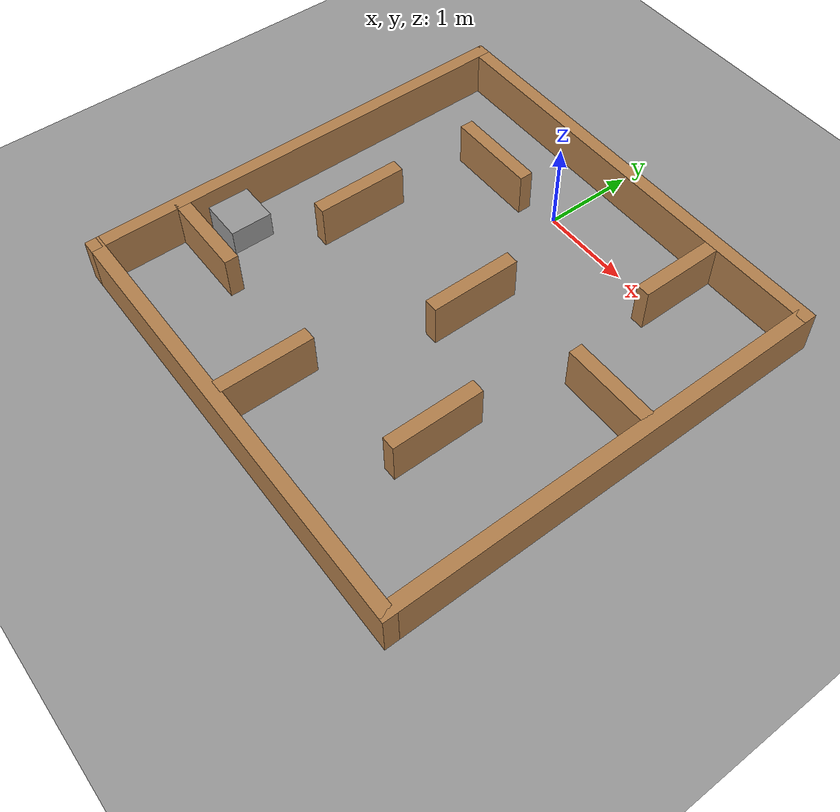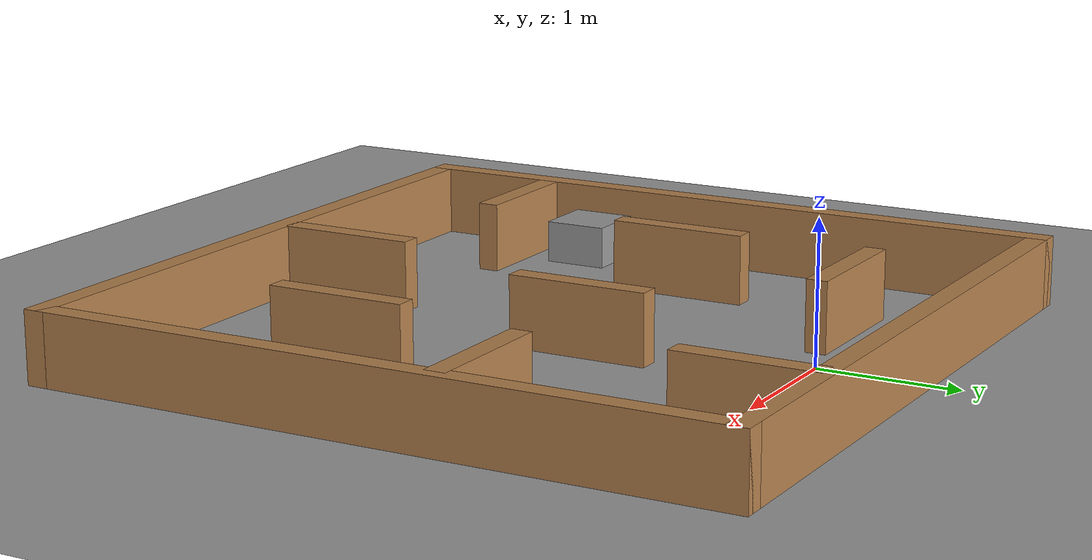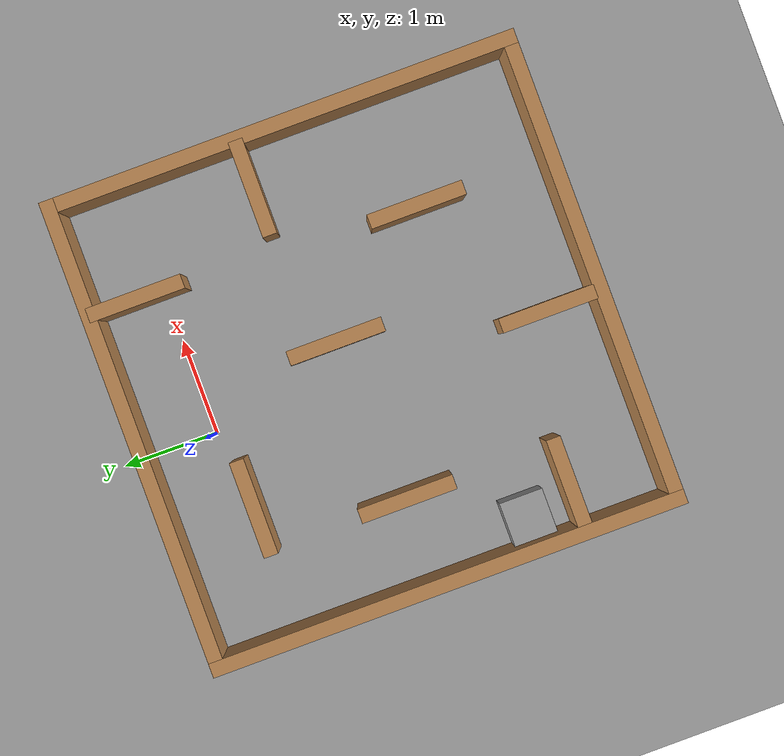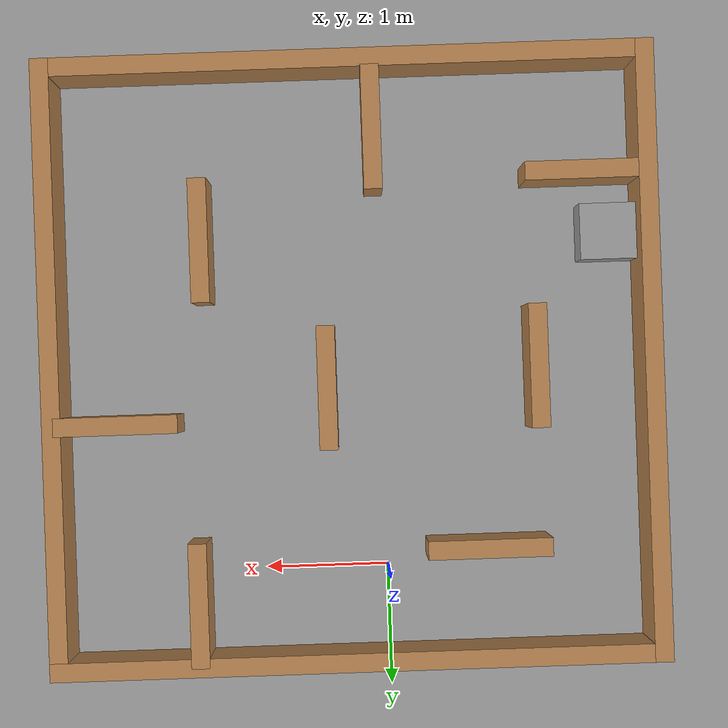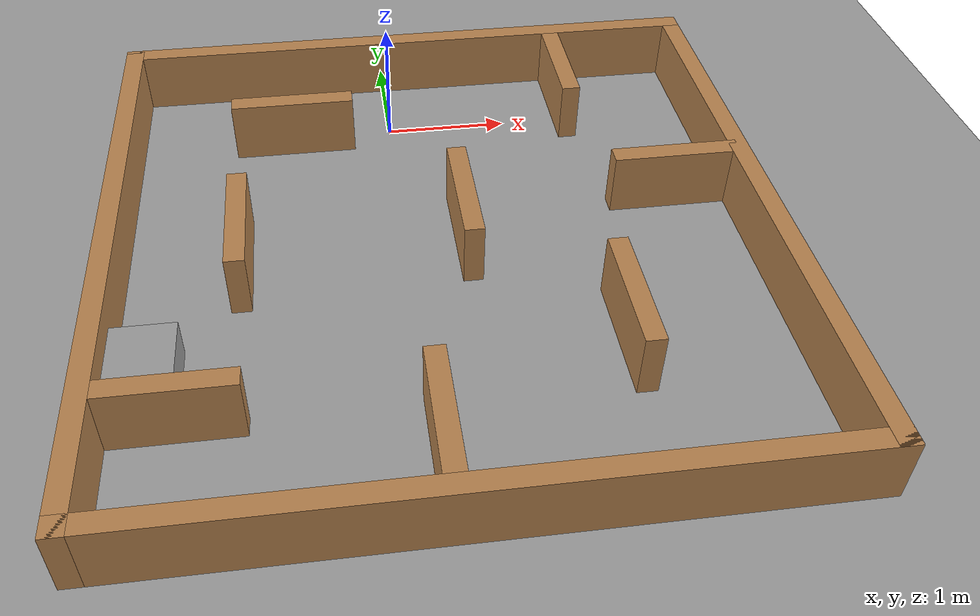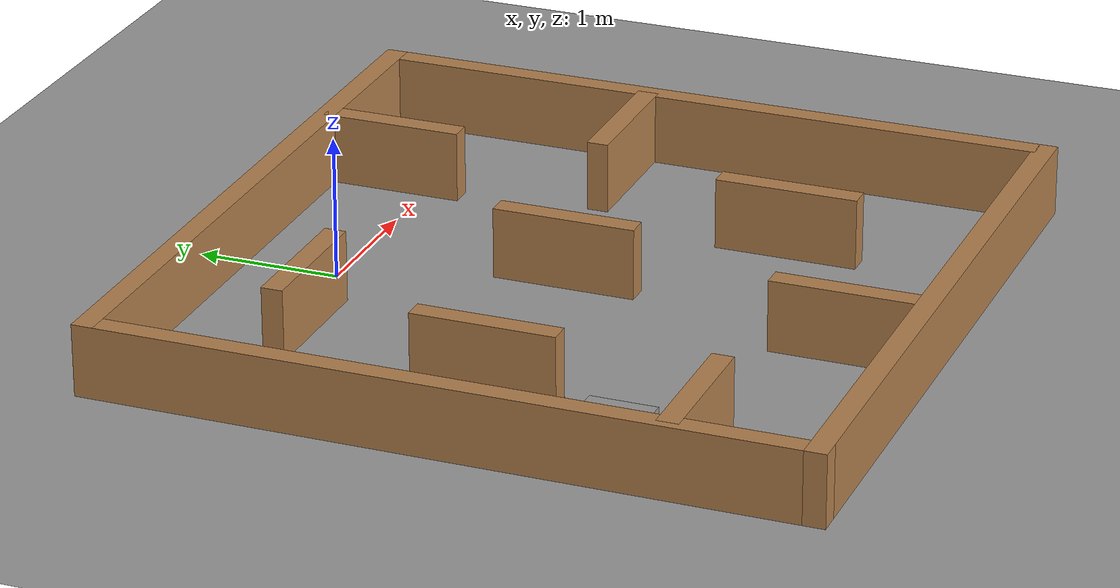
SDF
<sdf version="1.6">
 <world name="default">
  <light name="sun" type="directional">
   <pose>0 0 10 0 -0 0</pose>
   <diffuse>0.8 0.8 0.8 1</diffuse>
   <specular>0.2 0.2 0.2 1</specular>
   <attenuation>
    <range>1000</range>
    <constant>0.9</constant>
    <linear>0.01</linear>
    <quadratic>0.001</quadratic>
   </attenuation>
   <direction>0.5 0.1 -0.9</direction>
  </light>
  <scene><ambient>0.4 0.4 0.4 1</ambient><background>0.7 0.7 0.7 1</background><shadows>1</shadows></scene>
  <physics name="default_physics" default="0" type="ode">
   <max_step_size>0.01</max_step_size>
   <real_time_factor>1</real_time_factor>
   <real_time_update_rate>100</real_time_update_rate>
  </physics>
  <model name="ground_plane_0">
   <static>1</static>
   <link name="link">
    <collision name="collision">
     <geometry><plane><normal>0 0 1</normal><size>100 100</size></plane></geometry>
     <surface><friction><ode><mu>100</mu><mu2>50</mu2></ode></friction></surface>
    </collision>
    <visual name="visual">
     <cast_shadows>0</cast_shadows>
     <geometry><plane><normal>0 0 1</normal><size>100 100</size></plane></geometry>
     <material>
      <script><uri>file://media/materials/scripts/gazebo.material</uri><name>Gazebo/Grey</name></script>
     </material>
    </visual>
    <velocity_decay><linear>0</linear><angular>0</angular></velocity_decay>
   </link>
   <pose>0.497681 0 0 0 -0 0</pose>
  </model>
  <gravity>0 0 -9.8</gravity>
  <magnetic_field>6e-06 2.3e-05 -4.2e-05</magnetic_field>
  <atmosphere type="adiabatic"/>
  <audio><device>default</device></audio>
  <spherical_coordinates>
   <surface_model>EARTH_WGS84</surface_model>
   <latitude_deg>0</latitude_deg>
   <longitude_deg>0</longitude_deg>
   <elevation>0</elevation>
   <heading_deg>0</heading_deg>
  </spherical_coordinates>
  <model name="turtlebot3_plaza">
   <pose>0.24666 -1.69141 0 0 -0 0</pose>
   <link name="Wall_0">
    <collision name="Wall_0_Collision">
     <geometry><box><size>5 0.15 0.5</size></box></geometry>
     <pose>0 0 0.25 0 -0 0</pose>
    </collision>
    <visual name="Wall_0_Visual">
     <pose>0 0 0.25 0 -0 0</pose>
     <geometry><box><size>5 0.15 0.5</size></box></geometry>
     <material>
      <script><uri>file://media/materials/scripts/gazebo.material</uri><name>Gazebo/Wood</name></script>
      <ambient>1 1 1 1</ambient>
     </material>
    </visual>
    <pose>-2.425 0 0 0 -0 1.5708</pose>
   </link>
   <link name="Wall_11">
    <collision name="Wall_11_Collision">
     <geometry><box><size>1 0.15 0.5</size></box></geometry>
     <pose>0 0 0.25 0 -0 0</pose>
    </collision>
    <visual name="Wall_11_Visual">
     <pose>0 0 0.25 0 -0 0</pose>
     <geometry><box><size>1 0.15 0.5</size></box></geometry>
     <material>
      <script><uri>file://media/materials/scripts/gazebo.material</uri><name>Gazebo/Wood</name></script>
      <ambient>1 1 1 1</ambient>
     </material>
    </visual>
    <pose>-1.937 -1.467 0 0 -0 0</pose>
   </link>
   <link name="Wall_13">
    <collision name="Wall_13_Collision">
     <geometry><box><size>1 0.15 0.5</size></box></geometry>
     <pose>0 0 0.25 0 -0 0</pose>
    </collision>
    <visual name="Wall_13_Visual">
     <pose>0 0 0.25 0 -0 0</pose>
     <geometry><box><size>1 0.15 0.5</size></box></geometry>
     <material>
      <script><uri>file://media/materials/scripts/gazebo.material</uri><name>Gazebo/Wood</name></script>
      <ambient>1 1 1 1</ambient>
     </material>
    </visual>
    <pose>-0.22 -1.866 0 0 0 -1.5708</pose>
   </link>
   <link name="Wall_15">
    <collision name="Wall_15_Collision">
     <geometry><box><size>1 0.15 0.5</size></box></geometry>
     <pose>0 0 0.25 0 -0 0</pose>
    </collision>
    <visual name="Wall_15_Visual">
     <pose>0 0 0.25 0 -0 0</pose>
     <geometry><box><size>1 0.15 0.5</size></box></geometry>
     <material>
      <script><uri>file://media/materials/scripts/gazebo.material</uri><name>Gazebo/Wood</name></script>
      <ambient>1 1 1 1</ambient>
     </material>
    </visual>
    <pose>1.195 -1.002 0 0 -0 1.5708</pose>
   </link>
   <link name="Wall_17">
    <collision name="Wall_17_Collision">
     <geometry><box><size>1 0.15 0.5</size></box></geometry>
     <pose>0 0 0.25 0 -0 0</pose>
    </collision>
    <visual name="Wall_17_Visual">
     <pose>0 0 0.25 0 -0 0</pose>
     <geometry><box><size>1 0.15 0.5</size></box></geometry>
     <material>
      <script><uri>file://media/materials/scripts/gazebo.material</uri><name>Gazebo/Wood</name></script>
      <ambient>1 1 1 1</ambient>
     </material>
    </visual>
    <pose>1.288 1.93 0 0 0 -1.5708</pose>
   </link>
   <link name="Wall_19">
    <collision name="Wall_19_Collision">
     <geometry><box><size>1 0.15 0.5</size></box></geometry>
     <pose>0 0 0.25 0 -0 0</pose>
    </collision>
    <visual name="Wall_19_Visual">
     <pose>0 0 0.25 0 -0 0</pose>
     <geometry><box><size>1 0.15 0.5</size></box></geometry>
     <material>
      <script><uri>file://media/materials/scripts/gazebo.material</uri><name>Gazebo/Wood</name></script>
      <ambient>1 1 1 1</ambient>
     </material>
    </visual>
    <pose>1.91128 0.4632 0 0 -0 0</pose>
   </link>
   <link name="Wall_2">
    <collision name="Wall_2_Collision">
     <geometry><box><size>5 0.15 0.5</size></box></geometry>
     <pose>0 0 0.25 0 -0 0</pose>
    </collision>
    <visual name="Wall_2_Visual">
     <pose>0 0 0.25 0 -0 0</pose>
     <geometry><box><size>5 0.15 0.5</size></box></geometry>
     <material>
      <script><uri>file://media/materials/scripts/gazebo.material</uri><name>Gazebo/Wood</name></script>
      <ambient>1 1 1 1</ambient>
     </material>
    </visual>
    <pose>0 2.425 0 0 -0 0</pose>
   </link>
   <link name="Wall_21">
    <collision name="Wall_21_Collision">
     <geometry><box><size>1 0.15 0.5</size></box></geometry>
     <pose>0 0 0.25 0 -0 0</pose>
    </collision>
    <visual name="Wall_21_Visual">
     <pose>0 0 0.25 0 -0 0</pose>
     <geometry><box><size>1 0.15 0.5</size></box></geometry>
     <material>
      <script><uri>file://media/materials/scripts/gazebo.material</uri><name>Gazebo/Wood</name></script>
      <ambient>1 1 1 1</ambient>
     </material>
    </visual>
    <pose>0.204 0.215 0 0 0 -1.5708</pose>
   </link>
   <link name="Wall_3">
    <collision name="Wall_3_Collision">
     <geometry><box><size>5 0.15 0.5</size></box></geometry>
     <pose>0 0 0.25 0 -0 0</pose>
    </collision>
    <visual name="Wall_3_Visual">
     <pose>0 0 0.25 0 -0 0</pose>
     <geometry><box><size>5 0.15 0.5</size></box></geometry>
     <material>
      <script><uri>file://media/materials/scripts/gazebo.material</uri><name>Gazebo/Wood</name></script>
      <ambient>1 1 1 1</ambient>
     </material>
    </visual>
    <pose>2.425 0 0 0 0 -1.5708</pose>
   </link>
   <link name="Wall_4">
    <collision name="Wall_4_Collision">
     <geometry><box><size>5 0.15 0.5</size></box></geometry>
     <pose>0 0 0.25 0 -0 0</pose>
    </collision>
    <visual name="Wall_4_Visual">
     <pose>0 0 0.25 0 -0 0</pose>
     <geometry><box><size>5 0.15 0.5</size></box></geometry>
     <material>
      <script><uri>file://media/materials/scripts/gazebo.material</uri><name>Gazebo/Wood</name></script>
      <ambient>1 1 1 1</ambient>
     </material>
    </visual>
    <pose>0 -2.425 0 0 -0 3.14159</pose>
   </link>
   <link name="Wall_7">
    <collision name="Wall_7_Collision">
     <geometry><box><size>1 0.15 0.5</size></box></geometry>
     <pose>0 0 0.25 0 -0 0</pose>
    </collision>
    <visual name="Wall_7_Visual">
     <pose>0 0 0.25 0 -0 0</pose>
     <geometry><box><size>1 0.15 0.5</size></box></geometry>
     <material>
      <script><uri>file://media/materials/scripts/gazebo.material</uri><name>Gazebo/Wood</name></script>
      <ambient>1 1 1 1</ambient>
     </material>
    </visual>
    <pose>-1.064 1.548 0 0 -0 0</pose>
   </link>
   <link name="Wall_9">
    <collision name="Wall_9_Collision">
     <geometry><box><size>1 0.15 0.5</size></box></geometry>
     <pose>0 0 0.25 0 -0 0</pose>
    </collision>
    <visual name="Wall_9_Visual">
     <pose>0 0 0.25 0 -0 0</pose>
     <geometry><box><size>1 0.15 0.5</size></box></geometry>
     <material>
      <script><uri>file://media/materials/scripts/gazebo.material</uri><name>Gazebo/Wood</name></script>
      <ambient>1 1 1 1</ambient>
     </material>
    </visual>
    <pose>-1.502 0.092 0 0 0 -1.5708</pose>
   </link>
   <static>1</static>
  </model>
  <model name="unit_box">
   <pose>-1.87347 -2.67491 0.151874 1e-06 6e-06 -7.6e-05</pose>
   <link name="link">
    <inertial>
     <mass>1</mass>
     <inertia>
      <ixx>0.166667</ixx>
      <ixy>0</ixy>
      <ixz>0</ixz>
      <iyy>0.166667</iyy>
      <iyz>0</iyz>
      <izz>0.166667</izz>
     </inertia>
    </inertial>
    <collision name="collision">
     <geometry><box><size>0.459728 0.456506 0.303754</size></box></geometry>
    </collision>
    <visual name="visual">
     <geometry><box><size>0.459728 0.456506 0.303754</size></box></geometry>
     <material>
      <script><name>Gazebo/Grey</name><uri>file://media/materials/scripts/gazebo.material</uri></script>
     </material>
    </visual>
   </link>
  </model>
 </world>
</sdf>
